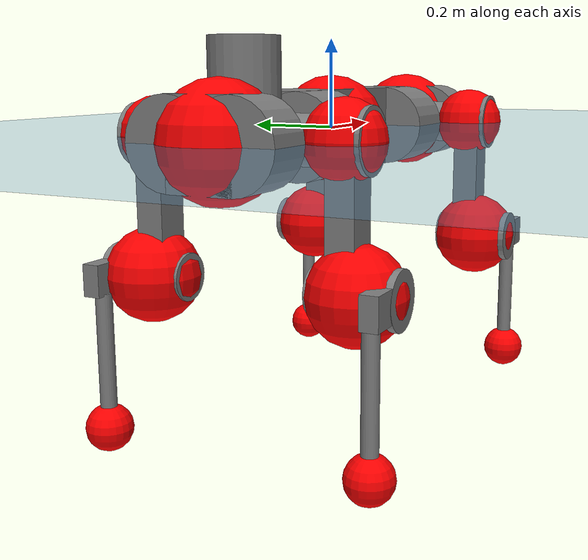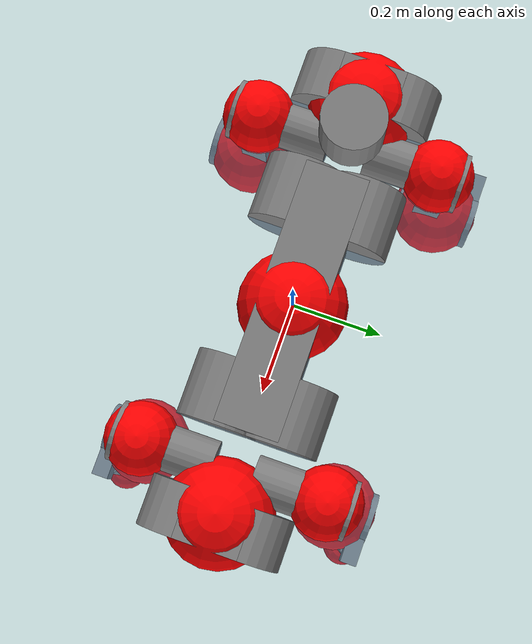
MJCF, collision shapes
<mujoco model="anymal_c">
  <compiler angle="radian" assetdir="assets" balanceinertia="true" inertiafromgeom="false"/>

  <option timestep="0.005" density="1.2" viscosity="2e-05"/>

  <size nkey="1"/>

  <visual>
    <quality shadowsize="8192"/>
    <map shadowclip="0.5"/>
  </visual>

  <default>
    <default class="/">
      <material specular="0" shininess="0.25"/>
      <geom contype="0" conaffinity="0" group="1" solref="-1000 -80"/>
      <site size="0.01 0.005 0.005" group="5"/>
      <general forcelimited="true" forcerange="-80 80" biastype="affine" gainprm="80" biasprm="0 -80 -2"/>
      <default class="anymal_c">
        <joint armature="0.01" damping="0.01" frictionloss="0.1"/>
        <default class="visual">
          <geom type="mesh" group="2"/>
          <default class="visual_zflip"/>
        </default>
        <default class="collision">
          <geom type="cylinder" group="3"/>
          <default class="foot">
            <geom size="0.03 0 0" type="sphere" condim="6" priority="1" friction="0.8 0.02 0.01" solimp="0.015 1 0.03"/>
          </default>
        </default>
      </default>
      <default class="reward_collision_sphere">
        <geom group="5" rgba="1 0 0 1"/>
      </default>
    </default>
  </default>

  <asset>
    <texture type="skybox" colorspace="auto" name="//unnamed_texture_0" builtin="gradient" rgb1="0.95 0.95 0.95" rgb2="0.95 0.95 0.95" width="100" height="600"/>
    <texture type="2d" colorspace="auto" name="texplane" builtin="checker" rgb1="0.345 0.575 0.748" rgb2="0.345 0.575 0.748" markrgb="1 1 1" width="512" height="512"/>
    <texture type="2d" colorspace="linear" name="base" file="base.png"/>
    <texture type="2d" colorspace="linear" name="top_shell" file="top_shell.png"/>
    <texture type="2d" colorspace="linear" name="bottom_shell" file="bottom_shell.png"/>
    <texture type="2d" colorspace="linear" name="remote" file="remote.png"/>
    <texture type="2d" colorspace="linear" name="hatch" file="hatch.png"/>
    <texture type="2d" colorspace="linear" name="handle" file="handle.png"/>
    <texture type="2d" colorspace="linear" name="face" file="face.png"/>
    <texture type="2d" colorspace="linear" name="battery" file="battery.png"/>
    <texture type="2d" colorspace="linear" name="lidar_cage" file="lidar_cage.png"/>
    <texture type="2d" colorspace="linear" name="depth_camera" file="depth_camera.png"/>
    <texture type="2d" colorspace="linear" name="wide_angle_camera" file="wide_angle_camera.png"/>
    <texture type="2d" colorspace="linear" name="lidar" file="lidar.png"/>
    <texture type="2d" colorspace="linear" name="drive" file="drive.png"/>
    <texture type="2d" colorspace="linear" name="hip_l" file="hip_l.png"/>
    <texture type="2d" colorspace="linear" name="shank_l" file="shank_l.png"/>
    <texture type="2d" colorspace="linear" name="foot" file="foot.png"/>
    <texture type="2d" colorspace="linear" name="thigh" file="thigh.png"/>
    <texture type="2d" colorspace="linear" name="shank_r" file="shank_r.png"/>
    <texture type="2d" colorspace="linear" name="hip_r" file="hip_r.png"/>
    <material name="MatPlane" class="/" texture="texplane" texuniform="true" texrepeat="2 2" specular="0.9" shininess="0.5"/>
    <material name="black_plastic" class="/" rgba="0.007 0.007 0.007 1"/>
    <material name="green" class="/" rgba="0.052 0.178 0.033 1"/>
    <material name="red" class="/" rgba="0.178 0.006 0.005 1"/>
    <material name="yellow" class="/" rgba="0.178 0.119 0.006 1"/>
    <material name="lwl" class="/" rgba="0.8 0.8 0.8 1"/>
    <material name="base" class="/" texture="base"/>
    <material name="top_shell" class="/" texture="top_shell"/>
    <material name="bottom_shell" class="/" texture="bottom_shell"/>
    <material name="hip_l" class="/" texture="hip_l"/>
    <material name="thigh" class="/" texture="thigh"/>
    <material name="shank_l" class="/" texture="shank_l"/>
    <material name="foot" class="/" texture="foot"/>
    <material name="hip_r" class="/" texture="hip_r"/>
    <material name="shank" class="/" texture="shank_r"/>
    <material name="hatch" class="/" texture="hatch"/>
    <material name="remote" class="/" texture="remote"/>
    <material name="handle" class="/" texture="handle"/>
    <material name="face" class="/" texture="face"/>
    <material name="depth_camera" class="/" texture="depth_camera"/>
    <material name="wide_angle_camera" class="/" texture="wide_angle_camera"/>
    <material name="battery" class="/" texture="battery"/>
    <material name="lidar_cage" class="/" texture="lidar_cage"/>
    <material name="lidar" class="/" texture="lidar"/>
    <material name="drive" class="/" texture="drive"/>
    <mesh name="base_0" class="/" file="base_0.obj"/>
    <mesh name="base_1" class="/" file="base_1.obj"/>
    <mesh name="base_2" class="/" file="base_2.obj"/>
    <mesh name="base_3" class="/" file="base_3.obj"/>
    <mesh name="base_4" class="/" file="base_4.obj"/>
    <mesh name="base_5" class="/" file="base_5.obj"/>
    <mesh name="top_shell" class="/" file="top_shell.obj"/>
    <mesh name="bottom_shell" class="/" file="bottom_shell.obj"/>
    <mesh name="remote" class="/" file="remote.obj"/>
    <mesh name="handle" class="/" file="handle.obj"/>
    <mesh name="face" class="/" file="face.obj"/>
    <mesh name="wide_angle_camera" class="/" file="wide_angle_camera.obj"/>
    <mesh name="depth_camera" class="/" file="depth_camera.obj"/>
    <mesh name="battery" class="/" file="battery.obj"/>
    <mesh name="lidar_cage" class="/" file="lidar_cage.obj"/>
    <mesh name="lidar" class="/" file="lidar.obj"/>
    <mesh name="drive" class="/" file="drive.obj"/>
    <mesh name="hip_l" class="/" file="hip_l.obj"/>
    <mesh name="thigh" class="/" file="thigh.obj"/>
    <mesh name="shank_l" class="/" file="shank_l.obj"/>
    <mesh name="foot" class="/" file="foot.obj"/>
    <mesh name="hip_r" class="/" file="hip_r.obj"/>
    <mesh name="hatch" class="/" file="hatch.obj"/>
    <mesh name="shank_r" class="/" file="shank_r.obj"/>
  </asset>

  <worldbody>
    <geom name="floor" class="/" size="100 100 0.125" type="plane" group="0" material="MatPlane"/>
    <light name="toplight_shadow" class="/" pos="0 0 5" dir="0.0990148 0.0990148 -0.990148" type="directional" ambient="0.04 0.04 0.04" diffuse="0.55 0.55 0.55" specular="0.12 0.12 0.12"/>
    <light name="toplight_fill" class="/" pos="0 0 5" dir="0.0990148 0.0990148 -0.990148" type="directional" castshadow="false" ambient="0.04 0.04 0.04" diffuse="0.3 0.3 0.3" specular="0.08 0.08 0.08"/>
    <body name="trunk" childclass="anymal_c" pos="0.000294908 -0.000120754 -0.00235979" quat="0.999999 -0.000363974 0.000903084 -0.000430696">
      <inertial pos="0.00291598 0.00124367 0.0518164" quat="0.496122 0.506742 0.494169 0.502865" mass="20.4959" diaginertia="0.847597 0.562368 0.255504"/>
      <joint name="//unnamed_joint_0" type="free" armature="0" damping="0" frictionloss="0"/>
      <geom name="//unnamed_geom_1" class="visual" material="green" mesh="base_0"/>
      <geom name="//unnamed_geom_2" class="visual" material="yellow" mesh="base_1"/>
      <geom name="//unnamed_geom_3" class="visual" material="red" mesh="base_2"/>
      <geom name="//unnamed_geom_4" class="visual" material="black_plastic" mesh="base_3"/>
      <geom name="//unnamed_geom_5" class="visual" material="lwl" mesh="base_4"/>
      <geom name="//unnamed_geom_6" class="visual" material="base" mesh="base_5"/>
      <geom name="trunk_1" class="collision" size="0.294974 0.0712005 0.0915435" type="box"/>
      <geom name="trunk_2" class="collision" size="0.0915435 0.0737434" pos="0.228926 0.0680862 0" quat="0.707107 0 0.707107 0"/>
      <geom name="trunk_3" class="collision" size="0.0915435 0.0737434" pos="-0.228926 0.0680862 0" quat="0.707107 0 0.707107 0"/>
      <geom name="trunk_4" class="collision" size="0.0915435 0.0737434" pos="0.228926 -0.0680862 0" quat="0.707107 0 0.707107 0"/>
      <geom name="trunk_5" class="collision" size="0.0915435 0.0737434" pos="-0.228926 -0.0680862 0" quat="0.707107 0 0.707107 0"/>
      <geom name="//unnamed_geom_12" class="visual" material="top_shell" mesh="top_shell"/>
      <geom name="//unnamed_geom_13" class="visual" material="bottom_shell" mesh="bottom_shell"/>
      <geom name="//unnamed_geom_14" class="visual" material="remote" mesh="remote"/>
      <geom name="//unnamed_geom_15" class="visual" material="handle" mesh="handle"/>
      <geom name="//unnamed_geom_16" class="visual" pos="0.436275 0 0" quat="1 0 0 0" material="face" mesh="face"/>
      <geom name="trunk_6" class="collision" size="0.0559433 0.0712005 0.0915435" pos="0.494164 0 0" type="box"/>
      <geom name="//unnamed_geom_18" class="collision" size="0.0915435 0.0559433" pos="0.494164 0.0680862 0" quat="0.707107 0 0.707107 0"/>
      <geom name="//unnamed_geom_19" class="collision" size="0.0915435 0.0559433" pos="0.494164 -0.0680862 0" quat="0.707107 0 0.707107 0"/>
      <geom name="//unnamed_geom_20" class="visual" pos="0.4859 0 -0.0297671" quat="0.965926 0 0.258819 0" material="depth_camera" mesh="depth_camera"/>
      <geom name="//unnamed_geom_21" class="visual" pos="0.539949 0 0.0153631" material="wide_angle_camera" mesh="wide_angle_camera"/>
      <geom name="//unnamed_geom_22" class="visual_zflip" pos="-0.436275 0 0" quat="0 0 0 1" material="face" mesh="face"/>
      <geom name="trunk_7" class="collision" size="0.0559433 0.0712005 0.0915435" pos="-0.494164 0 0" quat="0 0 0 1" type="box"/>
      <geom name="//unnamed_geom_24" class="collision" size="0.0915435 0.0559433" pos="-0.494164 -0.0680862 0" quat="0 -0.707107 0 0.707107"/>
      <geom name="//unnamed_geom_25" class="collision" size="0.0915435 0.0559433" pos="-0.494164 0.0680862 0" quat="0 -0.707107 0 0.707107"/>
      <geom name="//unnamed_geom_26" class="visual" pos="-0.4859 0 -0.0297671" quat="0 -0.258819 0 0.965926" material="depth_camera" mesh="depth_camera"/>
      <geom name="//unnamed_geom_27" class="visual_zflip" pos="-0.539949 0 0.0153631" quat="0 0 0 1" material="wide_angle_camera" mesh="wide_angle_camera"/>
      <geom name="//unnamed_geom_28" class="visual" material="battery" mesh="battery"/>
      <geom name="//unnamed_geom_29" class="visual" pos="0 0.0733204 0.0300125" quat="0.683013 -0.183013 0.183013 0.683013" material="depth_camera" mesh="depth_camera"/>
      <geom name="//unnamed_geom_30" class="visual" pos="0 -0.0733204 0.0300125" quat="0.683013 0.183013 0.183013 -0.683013" material="depth_camera" mesh="depth_camera"/>
      <geom name="//unnamed_geom_31" class="visual" pos="-0.383122 0 0.07543" quat="1 0 0 0" material="lidar_cage" mesh="lidar_cage"/>
      <geom name="trunk_8" class="collision" size="0.0712005 0.061029" pos="-0.383122 0 0.137006"/>
      <geom name="//unnamed_geom_33" class="visual" pos="-0.383122 -3.13797e-05 0.145934" quat="0.707107 0 0 -0.707107" material="lidar" mesh="lidar"/>
      <geom name="//unnamed_geom_34" class="visual" pos="0.315654 0.101176 -9.24583e-10" quat="0.258819 0.965926 0 0" material="drive" mesh="drive"/>
      <geom name="//unnamed_geom_35" class="visual" pos="0.315654 -0.101176 9.24583e-10" quat="0.258819 -0.965926 0 0" material="drive" mesh="drive"/>
      <geom name="//unnamed_geom_36" class="visual" pos="-0.315654 0.101176 9.24583e-10" quat="0 0 0.965926 -0.258819" material="drive" mesh="drive"/>
      <geom name="//unnamed_geom_37" class="visual" pos="-0.315654 -0.101176 -9.24583e-10" quat="0 0 -0.965926 -0.258819" material="drive" mesh="drive"/>
      <geom name="//unnamed_geom_38" class="visual" pos="0.122094 0 0.0749169" quat="1 0 0 0" material="hatch" mesh="hatch"/>
      <geom name="//unnamed_geom_39" class="reward_collision_sphere" size="0.122058"/>
      <geom name="//unnamed_geom_40" class="reward_collision_sphere" size="0.122058" pos="0.47364 0 0"/>
      <geom name="//unnamed_geom_41" class="reward_collision_sphere" size="0.122058" pos="-0.47364 0 0"/>
      <site name="imu" pos="0.260075 0.00790095 0.0413722" size="0.0101715"/>
      <camera name="track" pos="0 -1.94532 0" quat="0.707107 0.707107 0 0" mode="trackcom"/>
      <camera name="ego_camera" pos="0.47364 0 -0.0410503" quat="-0.5 -0.5 0.5 0.5"/>
      <body name="LF_HIP" pos="0.315702 0.100576 0.00111199" quat="0.258754 0.965943 -6.68272e-06 -7.72371e-05">
        <inertial pos="0.057726 -0.0149777 -0.0106463" quat="-0.132313 0.710836 -0.124628 0.679465" mass="2.93497" diaginertia="0.00766546 0.00434014 0.00374766"/>
        <joint name="LF_HAA" pos="0 0 0" axis="0.999984 0.00409993 -0.00390636" range="-0.712388 0.481927" armature="0.0102225" damping="0.00560879" frictionloss="0.0998264"/>
        <geom name="//unnamed_geom_42" class="visual" pos="0 -5.43891e-05 8.93336e-06" quat="0.258819 -0.965926 0 0" material="hip_l" mesh="hip_l"/>
        <geom name="//unnamed_geom_43" class="visual" pos="0.0630467 -0.0753619 -0.0439066" quat="0.183013 -0.683013 0.683013 0.183013" material="drive" mesh="drive"/>
        <geom name="//unnamed_geom_44" class="collision" size="0.0508575 0.0712005" pos="0.0630467 -0.0116328 -0.00708632" quat="-0.353553 -0.612372 0.612372 -0.353553"/>
        <body name="LF_THIGH" pos="0.0621542 -0.0707964 -0.0416292" quat="0.183003 -0.682971 0.683062 0.182993">
          <inertial pos="0.0326635 -0.000285494 -0.25244" quat="0.993439 -0.00107202 -0.07757 0.084027" mass="3.13206" diaginertia="0.0379719 0.0254636 0.00457614"/>
          <joint name="LF_HFE" pos="0 0 0" axis="0.999999 -0.00151033 0.000405414" stiffness="0.00470085" range="-3.14139 3.13933" armature="0.00977095" damping="0.0120012" frictionloss="0.101739"/>
          <geom name="//unnamed_geom_45" class="visual" pos="0.00158914 2.50412e-06 0" quat="0.707107 0 0 -0.707107" material="thigh" mesh="thigh"/>
          <geom name="//unnamed_geom_46" class="collision" size="0.0661148 0.040686" pos="0.0421013 0 0" quat="0.5 0.5 -0.5 -0.5"/>
          <geom name="//unnamed_geom_47" class="collision" size="0.0381431 0.0305145 0.143738" pos="0.031576 0 -0.145025" quat="0.707107 0 0 -0.707107" type="box"/>
          <geom name="//unnamed_geom_48" class="visual" pos="0.105569 0 -0.292484" quat="1 0 0 0" material="drive" mesh="drive"/>
          <geom name="//unnamed_geom_49" class="collision" size="0.0508575 0.0712005" pos="0.0318917 0 -0.292484" quat="0.707107 0 0.707107 0"/>
          <geom name="//unnamed_geom_50" class="reward_collision_sphere" size="0.081372" pos="0.0263133 0 0"/>
          <body name="LF_SHANK" pos="0.104633 -0.000611742 -0.292939" quat="1 6.14477e-06 1.01869e-05 1.24811e-05">
            <inertial pos="0.00322132 -0.0617542 -0.0827084" quat="0.992958 -0.115348 -0.000614811 -0.0269921" mass="0.615702" diaginertia="0.0127666 0.00807746 0.00127444"/>
            <joint name="LF_KFE" pos="0 0 0" axis="1 -0.000664818 6.19113e-05" range="-3.18978 3.13755" armature="0.0104371" damping="0.0119816" frictionloss="0.114016"/>
            <geom name="//unnamed_geom_51" class="visual" pos="0.000518185 0.00276299 0" quat="0.707107 0 0 -0.707107" material="shank_l" mesh="shank_l"/>
            <geom name="LF_kfe_act" class="collision" size="0.061029 0.020343" pos="0.0210506 0 0" quat="0.5 0.5 -0.5 -0.5"/>
            <geom name="//unnamed_geom_53" class="collision" size="0.0584851 0.0343288 0.0193259" pos="0.0210506 -0.055927 0" quat="0.5 0.5 -0.5 -0.5" type="box"/>
            <geom name="//unnamed_geom_54" class="visual" pos="0.0137354 -0.084655 -0.346845" quat="0.382683 0 0 -0.92388" material="foot" mesh="foot"/>
            <geom name="LF_calf" class="collision" size="0.0178001 0.143675" pos="0.0137355 -0.0855454 -0.173422" quat="0.707107 0 0 -0.707107"/>
            <geom name="LF_foot" class="foot" size="0.030292" pos="0.0137355 -0.0855454 -0.323754" quat="0.707107 0 0 -0.707107"/>
            <geom name="//unnamed_geom_57" class="reward_collision_sphere" size="0.101715" pos="-0.0526266 0 0"/>
            <geom name="//unnamed_geom_58" class="reward_collision_sphere" size="0.0508575" pos="0.0137355 -0.0855454 -0.323754"/>
            <site name="LF_foot" class="foot" pos="0.0137355 -0.0855454 -0.323754" quat="0.707107 0 0 -0.707107" size="0.0101715"/>
          </body>
        </body>
      </body>
      <body name="RF_HIP" pos="0.316581 -0.102036 0.000616608" quat="0.259466 -0.965752 0.000260329 -0.000866425">
        <inertial pos="0.0607484 0.0151038 -0.00833613" quat="0.133029 0.681615 0.138749 0.706012" mass="3.05201" diaginertia="0.00764334 0.00434771 0.00380086"/>
        <joint name="RF_HAA" pos="0 0 0" axis="0.999995 0.00212916 0.00216178" range="-0.54016 0.729762" armature="0.0097818" damping="0.0109507" frictionloss="0.103516"/>
        <geom name="//unnamed_geom_59" class="visual" pos="0 5.43886e-05 8.93333e-06" quat="0.258819 0.965926 0 0" material="hip_r" mesh="hip_r"/>
        <geom name="//unnamed_geom_60" class="visual" pos="0.0630467 0.0753619 -0.0439066" quat="0.183013 0.683013 0.683013 -0.183013" material="drive" mesh="drive"/>
        <geom name="//unnamed_geom_61" class="collision" size="0.0508575 0.0712005" pos="0.0630467 0.0116328 -0.00708632" quat="-0.353553 0.612372 0.612372 0.353553"/>
        <body name="RF_THIGH" pos="0.0631229 0.0702309 -0.042678" quat="0.183101 0.6831 0.682998 -0.182651">
          <inertial pos="0.0331857 -0.00038016 -0.251115" quat="0.992336 -0.00297889 -0.0846671 0.0899566" mass="3.27956" diaginertia="0.0391996 0.0255821 0.00471849"/>
          <joint name="RF_HFE" pos="0 0 0" axis="0.999999 0.00043485 -0.00128303" stiffness="0.00975686" range="-3.1446 3.14104" armature="0.0106135" damping="0" frictionloss="0.0951771"/>
          <geom name="//unnamed_geom_62" class="visual" pos="0.00158914 2.50412e-06 0" quat="0.707107 0 0 -0.707107" material="thigh" mesh="thigh"/>
          <geom name="//unnamed_geom_63" class="collision" size="0.0661148 0.040686" pos="0.0421013 0 0" quat="0.5 0.5 0.5 0.5"/>
          <geom name="//unnamed_geom_64" class="collision" size="0.0381431 0.0305145 0.143738" pos="0.031576 0 -0.145025" quat="0.707107 0 0 0.707107" type="box"/>
          <geom name="//unnamed_geom_65" class="visual" pos="0.105569 0 -0.292484" quat="1 0 0 0" material="drive" mesh="drive"/>
          <geom name="//unnamed_geom_66" class="collision" size="0.0508575 0.0712005" pos="0.0318917 0 -0.292484" quat="0.707107 0 0.707107 0"/>
          <geom name="//unnamed_geom_67" class="reward_collision_sphere" size="0.081372" pos="0.0263133 0 0"/>
          <body name="RF_SHANK" pos="0.102973 -0.000312558 -0.292794" quat="1 8.72458e-05 0.00022378 0.000109337">
            <inertial pos="0.00661283 0.0575995 -0.081231" quat="0.991441 0.126978 -0.00309909 0.0302067" mass="0.603518" diaginertia="0.0127111 0.00801295 0.00123701"/>
            <joint name="RF_KFE" pos="0 0 0" axis="0.999997 -0.00134313 -0.0018413" stiffness="0.000259011" range="-3.13685 3.1316" armature="0.0101894" damping="0.000993788" frictionloss="0.104582"/>
            <geom name="//unnamed_geom_68" class="visual" pos="0.000518182 -0.00276299 0" quat="0.707107 0 0 0.707107" material="shank" mesh="shank_r"/>
            <geom name="RF_kfe_act" class="collision" size="0.061029 0.020343" pos="0.0210506 0 0" quat="0.5 0.5 0.5 0.5"/>
            <geom name="//unnamed_geom_70" class="collision" size="0.0584851 0.0343288 0.0193259" pos="0.0210506 0.055927 0" quat="0.5 0.5 0.5 0.5" type="box"/>
            <geom name="//unnamed_geom_71" class="visual" pos="0.0137357 0.084655 -0.346845" quat="0.382683 0 0 0.92388" material="foot" mesh="foot"/>
            <geom name="RF_calf" class="collision" size="0.0178001 0.143675" pos="0.0137355 0.0855454 -0.173422" quat="0.707107 0 0 0.707107"/>
            <geom name="RF_foot" class="foot" size="0.0290104" pos="0.0137355 0.0855454 -0.323754" quat="0.707107 0 0 0.707107"/>
            <geom name="//unnamed_geom_74" class="reward_collision_sphere" size="0.101715" pos="-0.0526266 0 0"/>
            <geom name="//unnamed_geom_75" class="reward_collision_sphere" size="0.0508575" pos="0.0137355 0.0855454 -0.323754"/>
            <site name="RF_foot" class="foot" pos="0.0137355 0.0855454 -0.323754" quat="0.707107 0 0 0.707107" size="0.0101715"/>
          </body>
        </body>
      </body>
      <body name="LH_HIP" pos="-0.315157 0.100856 0.00164126" quat="-0.000387316 -0.000316791 0.966023 -0.258455">
        <inertial pos="0.060785 0.0126066 -0.010989" quat="0.134492 0.682189 0.129645 0.70691" mass="2.91237" diaginertia="0.00763138 0.00423674 0.00369463"/>
        <joint name="LH_HAA" pos="0 0 0" axis="0.999942 -0.0100443 -0.00397239" stiffness="0.000108652" range="-0.531209 0.76469" armature="0.0110273" damping="0.0126136" frictionloss="0.10065"/>
        <geom name="//unnamed_geom_76" class="visual" pos="0 5.43886e-05 8.93333e-06" quat="-0.258819 -0.965926 0 0" material="hip_r" mesh="hip_r"/>
        <geom name="//unnamed_geom_77" class="visual" pos="0.0630467 0.0753619 -0.0439066" quat="0.183013 0.683013 0.683013 -0.183013" material="drive" mesh="drive"/>
        <geom name="//unnamed_geom_78" class="collision" size="0.0508575 0.0712005" pos="0.0630467 0.0116328 -0.00708632" quat="-0.353553 0.612372 0.612372 0.353553"/>
        <body name="LH_THIGH" pos="0.0626238 0.0690973 -0.0410683" quat="0.18245 0.682855 0.683354 -0.182891">
          <inertial pos="0.0349726 -0.0010938 -0.254348" quat="0.992783 -0.00520265 -0.0806417 0.0886082" mass="3.31674" diaginertia="0.0413726 0.0268763 0.00495057"/>
          <joint name="LH_HFE" pos="0 0 0" axis="0.99992 0.0105374 0.00692941" range="-3.15075 3.14587" armature="0.010367" damping="0" frictionloss="0.0979574"/>
          <geom name="//unnamed_geom_79" class="visual" pos="0.00158914 2.50412e-06 0" quat="0.707107 0 0 -0.707107" material="thigh" mesh="thigh"/>
          <geom name="//unnamed_geom_80" class="collision" size="0.0661148 0.040686" pos="0.0421013 0 0" quat="0.5 0.5 -0.5 -0.5"/>
          <geom name="//unnamed_geom_81" class="collision" size="0.0381431 0.0305145 0.143738" pos="0.031576 0 -0.145025" quat="0.707107 0 0 -0.707107" type="box"/>
          <geom name="//unnamed_geom_82" class="visual" pos="0.105569 0 -0.292484" quat="1 0 0 0" material="drive" mesh="drive"/>
          <geom name="//unnamed_geom_83" class="collision" size="0.0508575 0.0712005" pos="0.0318917 0 -0.292484" quat="0.707107 0 0.707107 0"/>
          <geom name="//unnamed_geom_84" class="reward_collision_sphere" size="0.081372" pos="0.0263133 0 0"/>
          <body name="LH_SHANK" pos="0.105453 0.000372955 -0.29435" quat="1 -0.000203368 0.000623857 -0.000491061">
            <inertial pos="0.00345654 0.0599056 -0.0851636" quat="0.992916 0.116008 -0.0108027 0.0233218" mass="0.616017" diaginertia="0.0130232 0.00800763 0.00124821"/>
            <joint name="LH_KFE" pos="0 0 0" axis="0.999996 -0.00248624 -0.00122957" stiffness="0.000515161" range="-3.1425 3.09044" armature="0.0112174" damping="0" frictionloss="0.100715"/>
            <geom name="//unnamed_geom_85" class="visual" pos="0.000518182 -0.00276299 0" quat="-0.707107 0 0 -0.707107" material="shank" mesh="shank_r"/>
            <geom name="LH_kfe_act" class="collision" size="0.061029 0.020343" pos="0.0210506 0 0" quat="0.5 0.5 -0.5 -0.5"/>
            <geom name="//unnamed_geom_87" class="collision" size="0.0584851 0.0343288 0.0193259" pos="0.0210506 0.055927 0" quat="0.5 0.5 -0.5 -0.5" type="box"/>
            <geom name="//unnamed_geom_88" class="visual" pos="0.0137357 0.084655 -0.346845" quat="-0.382683 0 0 -0.92388" material="foot" mesh="foot"/>
            <geom name="LH_calf" class="collision" size="0.0178001 0.143675" pos="0.0137355 0.0855454 -0.173422" quat="0.707107 0 0 -0.707107"/>
            <geom name="LH_foot" class="foot" size="0.030885" pos="0.0137355 0.0855454 -0.323754" quat="0.707107 0 0 -0.707107"/>
            <geom name="//unnamed_geom_91" class="reward_collision_sphere" size="0.101715" pos="-0.0526266 0 0"/>
            <geom name="//unnamed_geom_92" class="reward_collision_sphere" size="0.0508575" pos="0.0137355 0.0855454 -0.323754"/>
            <site name="LH_foot" class="foot" pos="0.0137355 0.0855454 -0.323754" quat="0.707107 0 0 -0.707107" size="0.0101715"/>
          </body>
        </body>
      </body>
      <body name="RH_HIP" pos="-0.313084 -0.101197 0.00222989" quat="4.18827e-06 0.000201331 -0.965906 -0.258894">
        <inertial pos="0.058248 -0.0150491 -0.0086724" quat="-0.118751 0.710337 -0.13122 0.681249" mass="2.918" diaginertia="0.00800378 0.0043996 0.00383958"/>
        <joint name="RH_HAA" pos="0 0 0" axis="0.999909 0.0109277 0.00785864" range="-0.710755 0.490017" armature="0.0101754" damping="0.0112965" frictionloss="0.114357"/>
        <geom name="//unnamed_geom_93" class="visual" pos="0 -5.43891e-05 8.93336e-06" quat="-0.258819 0.965926 0 0" material="hip_l" mesh="hip_l"/>
        <geom name="//unnamed_geom_94" class="visual" pos="0.0630467 -0.0753619 -0.0439066" quat="-0.183013 0.683013 -0.683013 -0.183013" material="drive" mesh="drive"/>
        <geom name="//unnamed_geom_95" class="collision" size="0.0508575 0.0712005" pos="0.0630467 -0.0116328 -0.00708632" quat="0.353553 0.612372 -0.612372 0.353553"/>
        <body name="RH_THIGH" pos="0.0625208 -0.070545 -0.0435969" quat="-0.183079 0.683077 -0.682934 -0.182998">
          <inertial pos="0.0317979 0.000303816 -0.253806" quat="0.993355 -0.00389375 -0.0788624 0.0837341" mass="3.17208" diaginertia="0.0404215 0.0264631 0.00478114"/>
          <joint name="RH_HFE" pos="0 0 0" axis="0.999996 0.000407814 -0.00295598" stiffness="0.00101106" range="-3.14661 3.12181" armature="0.0100834" damping="0.0125253" frictionloss="0.106252"/>
          <geom name="//unnamed_geom_96" class="visual" pos="0.00158914 2.50412e-06 0" quat="0.707107 0 0 -0.707107" material="thigh" mesh="thigh"/>
          <geom name="//unnamed_geom_97" class="collision" size="0.0661148 0.040686" pos="0.0421013 0 0" quat="0.5 0.5 0.5 0.5"/>
          <geom name="//unnamed_geom_98" class="collision" size="0.0381431 0.0305145 0.143738" pos="0.031576 0 -0.145025" quat="0.707107 0 0 0.707107" type="box"/>
          <geom name="//unnamed_geom_99" class="visual" pos="0.105569 0 -0.292484" quat="1 0 0 0" material="drive" mesh="drive"/>
          <geom name="//unnamed_geom_100" class="collision" size="0.0508575 0.0712005" pos="0.0318917 0 -0.292484" quat="0.707107 0 0.707107 0"/>
          <geom name="//unnamed_geom_101" class="reward_collision_sphere" size="0.081372" pos="0.0263133 0 0"/>
          <body name="RH_SHANK" pos="0.103104 0.00148439 -0.29357" quat="0.999999 -0.000911188 -0.000149672 0.000800982">
            <inertial pos="0.00477579 -0.0592725 -0.0826334" quat="0.993094 -0.112888 -0.00939529 -0.0305467" mass="0.623013" diaginertia="0.0131567 0.00801532 0.00124148"/>
            <joint name="RH_KFE" pos="0 0 0" axis="0.99989 -0.014285 0.00410855" range="-3.08716 3.15105" armature="0.0100326" damping="0" frictionloss="0.106443"/>
            <geom name="//unnamed_geom_102" class="visual" pos="0.000518185 0.00276299 0" quat="0.707107 0 0 -0.707107" material="shank_l" mesh="shank_l"/>
            <geom name="RH_kfe_act" class="collision" size="0.061029 0.020343" pos="0.0210506 0 0" quat="0.5 0.5 0.5 0.5"/>
            <geom name="//unnamed_geom_104" class="collision" size="0.0584851 0.0343288 0.0193259" pos="0.0210506 -0.055927 0" quat="0.5 0.5 0.5 0.5" type="box"/>
            <geom name="//unnamed_geom_105" class="visual" pos="0.0137354 -0.084655 -0.346845" quat="0.382683 0 0 -0.92388" material="foot" mesh="foot"/>
            <geom name="RH_calf" class="collision" size="0.0178001 0.143675" pos="0.0137355 -0.0855454 -0.173422" quat="0.707107 0 0 0.707107"/>
            <geom name="RH_foot" class="foot" size="0.0310183" pos="0.0137355 -0.0855454 -0.323754" quat="0.707107 0 0 0.707107"/>
            <geom name="//unnamed_geom_108" class="reward_collision_sphere" size="0.101715" pos="-0.0526266 0 0"/>
            <geom name="//unnamed_geom_109" class="reward_collision_sphere" size="0.0508575" pos="0.0137355 -0.0855454 -0.323754"/>
            <site name="RH_foot" class="foot" pos="0.0137355 -0.0855454 -0.323754" quat="0.707107 0 0 0.707107" size="0.0101715"/>
          </body>
        </body>
      </body>
    </body>
  </worldbody>

  <contact>
    <pair class="/" geom1="floor" geom2="LF_foot" name="//unnamed_contact_0"/>
    <pair class="/" geom1="floor" geom2="RF_foot" name="//unnamed_contact_1"/>
    <pair class="/" geom1="floor" geom2="LH_foot" name="//unnamed_contact_2"/>
    <pair class="/" geom1="floor" geom2="RH_foot" name="//unnamed_contact_3"/>
  </contact>

  <actuator>
    <general name="LF_HAA" class="/" joint="LF_HAA" forcerange="-82.9266 82.9266" gainprm="82.5601" biasprm="0 -82.5601 -1.96286"/>
    <general name="LF_HFE" class="/" joint="LF_HFE" forcerange="-79.6565 79.6565" gainprm="82.5601" biasprm="0 -82.5601 -1.96286"/>
    <general name="LF_KFE" class="/" joint="LF_KFE" forcerange="-81.6756 81.6756" gainprm="82.5601" biasprm="0 -82.5601 -1.96286"/>
    <general name="RF_HAA" class="/" joint="RF_HAA" forcerange="-81.8732 81.8732" gainprm="82.5601" biasprm="0 -82.5601 -1.96286"/>
    <general name="RF_HFE" class="/" joint="RF_HFE" forcerange="-82.5539 82.5539" gainprm="82.5601" biasprm="0 -82.5601 -1.96286"/>
    <general name="RF_KFE" class="/" joint="RF_KFE" forcerange="-82.6502 82.6502" gainprm="82.5601" biasprm="0 -82.5601 -1.96286"/>
    <general name="LH_HAA" class="/" joint="LH_HAA" forcerange="-82.7484 82.7484" gainprm="82.5601" biasprm="0 -82.5601 -1.96286"/>
    <general name="LH_HFE" class="/" joint="LH_HFE" forcerange="-74.7934 74.7934" gainprm="82.5601" biasprm="0 -82.5601 -1.96286"/>
    <general name="LH_KFE" class="/" joint="LH_KFE" forcerange="-88.4479 88.4479" gainprm="82.5601" biasprm="0 -82.5601 -1.96286"/>
    <general name="RH_HAA" class="/" joint="RH_HAA" forcerange="-81.5737 81.5737" gainprm="82.5601" biasprm="0 -82.5601 -1.96286"/>
    <general name="RH_HFE" class="/" joint="RH_HFE" forcerange="-84.567 84.567" gainprm="82.5601" biasprm="0 -82.5601 -1.96286"/>
    <general name="RH_KFE" class="/" joint="RH_KFE" forcerange="-81.7189 81.7189" gainprm="82.5601" biasprm="0 -82.5601 -1.96286"/>
  </actuator>

  <sensor>
    <gyro site="imu" name="imu_angular_velocity"/>
    <velocimeter site="imu" name="imu_linear_velocity"/>
    <framelinvel objtype="site" objname="LF_foot" name="LF_foot_global_linear_velocity"/>
    <framelinvel objtype="site" objname="RF_foot" name="RF_foot_global_linear_velocity"/>
    <framelinvel objtype="site" objname="LH_foot" name="LH_foot_global_linear_velocity"/>
    <framelinvel objtype="site" objname="RH_foot" name="RH_foot_global_linear_velocity"/>
  </sensor>

  <keyframe>
    <key name="home" qpos="0 0 0.55 1 0 0 0 0 0.4 -0.8 0 -0.4 0.8 0 -0.4 0.8 0 0.4 -0.8"/>
  </keyframe>
</mujoco>
